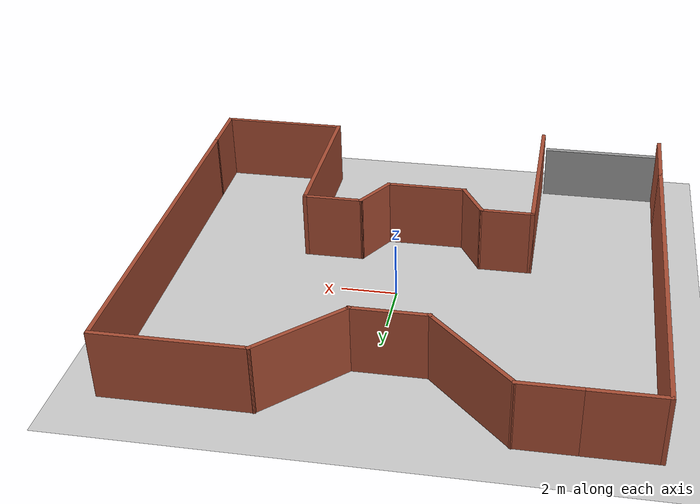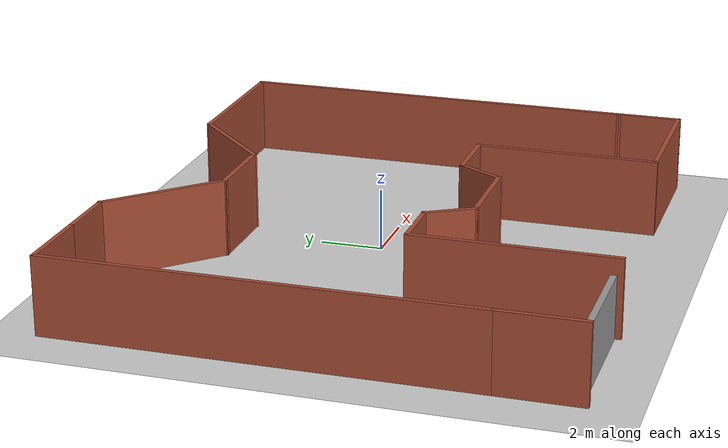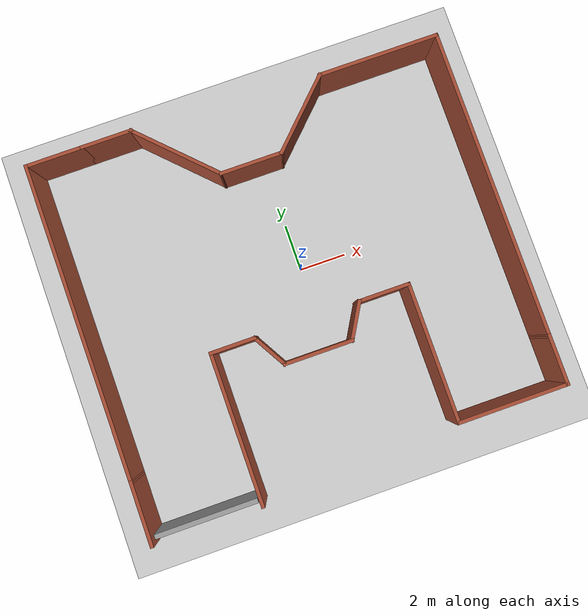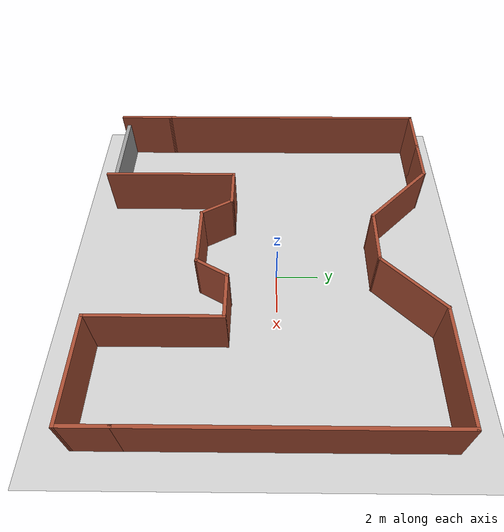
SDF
<sdf version="1.6">
 <world name="default">
  <light name="sun" type="directional">
   <pose>0 0 10 0 -0 0</pose>
   <diffuse>0.8 0.8 0.8 1</diffuse>
   <specular>0.2 0.2 0.2 1</specular>
   <attenuation>
    <range>1000</range>
    <constant>0.9</constant>
    <linear>0.01</linear>
    <quadratic>0.001</quadratic>
   </attenuation>
   <direction>-0.5 0.1 -0.9</direction>
  </light>
  <model name="ground_plane">
   <static>1</static>
   <link name="link">
    <collision name="collision">
     <geometry><plane><normal>0 0 1</normal><size>100 100</size></plane></geometry>
     <surface>
      <contact><collide_bitmask>65535</collide_bitmask></contact>
      <friction><ode><mu>100</mu><mu2>50</mu2></ode></friction>
     </surface>
    </collision>
    <visual name="visual">
     <cast_shadows>0</cast_shadows>
     <geometry><plane><normal>0 0 1</normal><size>100 100</size></plane></geometry>
     <material>
      <script><uri>file://media/materials/scripts/gazebo.material</uri><name>Gazebo/Grey</name></script>
     </material>
    </visual>
   </link>
  </model>
  <gravity>0 0 -9.8</gravity>
  <magnetic_field>6e-06 2.3e-05 -4.2e-05</magnetic_field>
  <atmosphere type="adiabatic"/>
  <physics name="default_physics" default="0" type="ode">
   <max_step_size>0.001</max_step_size>
   <real_time_factor>1</real_time_factor>
   <real_time_update_rate>1000</real_time_update_rate>
  </physics>
  <scene><ambient>0.4 0.4 0.4 1</ambient><background>0.7 0.7 0.7 1</background><shadows>1</shadows></scene>
  <spherical_coordinates>
   <surface_model>EARTH_WGS84</surface_model>
   <latitude_deg>0</latitude_deg>
   <longitude_deg>0</longitude_deg>
   <elevation>0</elevation>
   <heading_deg>0</heading_deg>
  </spherical_coordinates>
  <model name="building">
   <pose>-0.44047 -0.53212 0 0 -0 0</pose>
   <link name="Door_0">
    <collision name="Door_0_Collision">
     <geometry><box><size>4.35862 0.2 2</size></box></geometry>
     <pose>0 0 1 0 -0 0</pose>
    </collision>
    <visual name="Door_0_Visual">
     <pose>0 0 1 0 -0 0</pose>
     <geometry><box><size>4.35862 0.2 2</size></box></geometry>
     <material>
      <script><uri>file://media/materials/scripts/gazebo.material</uri><name>Gazebo/Grey</name></script>
     </material>
    </visual>
    <pose>-6.50998 -7.80567 0 0 -0 0</pose>
   </link>
   <link name="Wall_10">
    <collision name="Wall_10_Collision">
     <geometry><box><size>2.25 0.15 2.5</size></box></geometry>
     <pose>0 0 1.25 0 -0 0</pose>
    </collision>
    <visual name="Wall_10_Visual">
     <pose>0 0 1.25 0 -0 0</pose>
     <geometry><box><size>2.25 0.15 2.5</size></box></geometry>
     <material>
      <script><uri>file://media/materials/scripts/gazebo.material</uri><name>Gazebo/Bricks</name></script>
      <ambient>1 1 1 1</ambient>
     </material>
     <meta><layer>0</layer></meta>
    </visual>
    <pose>-5.37723 7.98357 0 0 -0 0</pose>
   </link>
   <link name="Wall_11">
    <collision name="Wall_11_Collision">
     <geometry><box><size>4.25 0.15 2.5</size></box></geometry>
     <pose>0 0 1.25 0 -0 0</pose>
    </collision>
    <visual name="Wall_11_Visual">
     <pose>0 0 1.25 0 -0 0</pose>
     <geometry><box><size>4.25 0.15 2.5</size></box></geometry>
     <material>
      <script><uri>file://media/materials/scripts/gazebo.material</uri><name>Gazebo/Bricks</name></script>
      <ambient>1 1 1 1</ambient>
     </material>
     <meta><layer>0</layer></meta>
    </visual>
    <pose>-2.87766 6.534 0 0 0 -0.785398</pose>
   </link>
   <link name="Wall_12">
    <collision name="Wall_12_Collision">
     <geometry><box><size>2.75 0.15 2.5</size></box></geometry>
     <pose>0 0 1.25 0 -0 0</pose>
    </collision>
    <visual name="Wall_12_Visual">
     <pose>0 0 1.25 0 -0 0</pose>
     <geometry><box><size>2.75 0.15 2.5</size></box></geometry>
     <material>
      <script><uri>file://media/materials/scripts/gazebo.material</uri><name>Gazebo/Bricks</name></script>
      <ambient>1 1 1 1</ambient>
     </material>
     <meta><layer>0</layer></meta>
    </visual>
    <pose>-0.128091 5.08443 0 0 -0 0</pose>
   </link>
   <link name="Wall_13">
    <collision name="Wall_13_Collision">
     <geometry><box><size>3.75 0.15 2.5</size></box></geometry>
     <pose>0 0 1.25 0 -0 0</pose>
    </collision>
    <visual name="Wall_13_Visual">
     <pose>0 0 1.25 0 -0 0</pose>
     <geometry><box><size>3.75 0.15 2.5</size></box></geometry>
     <material>
      <script><uri>file://media/materials/scripts/gazebo.material</uri><name>Gazebo/Bricks</name></script>
      <ambient>1 1 1 1</ambient>
     </material>
     <meta><layer>0</layer></meta>
    </visual>
    <pose>2.4447 6.35722 0 0 -0 0.785398</pose>
   </link>
   <link name="Wall_14">
    <collision name="Wall_14_Collision">
     <geometry><box><size>5.25 0.15 2.5</size></box></geometry>
     <pose>0 0 1.25 0 -0 0</pose>
    </collision>
    <visual name="Wall_14_Visual">
     <pose>0 0 1.25 0 -0 0</pose>
     <geometry><box><size>5.25 0.15 2.5</size></box></geometry>
     <material>
      <script><uri>file://media/materials/scripts/gazebo.material</uri><name>Gazebo/Bricks</name></script>
      <ambient>1 1 1 1</ambient>
     </material>
     <meta><layer>0</layer></meta>
    </visual>
    <pose>6.26749 7.63001 0 0 -0 0</pose>
   </link>
   <link name="Wall_15">
    <collision name="Wall_15_Collision">
     <geometry><box><size>13.25 0.15 2.5</size></box></geometry>
     <pose>0 0 1.25 0 -0 0</pose>
    </collision>
    <visual name="Wall_15_Visual">
     <pose>0 0 1.25 0 -0 0</pose>
     <geometry><box><size>13.25 0.15 2.5</size></box></geometry>
     <material>
      <script><uri>file://media/materials/scripts/gazebo.material</uri><name>Gazebo/Bricks</name></script>
      <ambient>1 1 1 1</ambient>
     </material>
     <meta><layer>0</layer></meta>
    </visual>
    <pose>8.81749 1.08001 0 0 0 -1.5708</pose>
   </link>
   <link name="Wall_17">
    <collision name="Wall_17_Collision">
     <geometry><box><size>2.75 0.15 2.5</size></box></geometry>
     <pose>0 0 1.25 0 -0 0</pose>
    </collision>
    <visual name="Wall_17_Visual">
     <pose>0 0 1.25 0 -0 0</pose>
     <geometry><box><size>2.75 0.15 2.5</size></box></geometry>
     <material>
      <script><uri>file://media/materials/scripts/gazebo.material</uri><name>Gazebo/Bricks</name></script>
      <ambient>1 1 1 1</ambient>
     </material>
     <meta><layer>0</layer></meta>
    </visual>
    <pose>-8.77723 -6.71463 0 0 0 -1.5708</pose>
   </link>
   <link name="Wall_19">
    <collision name="Wall_19_Collision">
     <geometry><box><size>6.5 0.15 2.5</size></box></geometry>
     <pose>0 0 1.25 0 -0 0</pose>
    </collision>
    <visual name="Wall_19_Visual">
     <pose>0 0 1.25 0 -0 0</pose>
     <geometry><box><size>6.5 0.15 2.5</size></box></geometry>
     <material>
      <script><uri>file://media/materials/scripts/gazebo.material</uri><name>Gazebo/Bricks</name></script>
      <ambient>1 1 1 1</ambient>
     </material>
     <meta><layer>0</layer></meta>
    </visual>
    <pose>-4.17723 -4.83963 0 0 -0 1.5708</pose>
   </link>
   <link name="Wall_20">
    <collision name="Wall_20_Collision">
     <geometry><box><size>2 0.15 2.5</size></box></geometry>
     <pose>0 0 1.25 0 -0 0</pose>
    </collision>
    <visual name="Wall_20_Visual">
     <pose>0 0 1.25 0 -0 0</pose>
     <geometry><box><size>2 0.15 2.5</size></box></geometry>
     <material>
      <script><uri>file://media/materials/scripts/gazebo.material</uri><name>Gazebo/Bricks</name></script>
      <ambient>1 1 1 1</ambient>
     </material>
     <meta><layer>0</layer></meta>
    </visual>
    <pose>-3.25223 -1.66463 0 0 -0 0</pose>
   </link>
   <link name="Wall_21">
    <collision name="Wall_21_Collision">
     <geometry><box><size>1.75 0.15 2.5</size></box></geometry>
     <pose>0 0 1.25 0 -0 0</pose>
    </collision>
    <visual name="Wall_21_Visual">
     <pose>0 0 1.25 0 -0 0</pose>
     <geometry><box><size>1.75 0.15 2.5</size></box></geometry>
     <material>
      <script><uri>file://media/materials/scripts/gazebo.material</uri><name>Gazebo/Bricks</name></script>
      <ambient>1 1 1 1</ambient>
     </material>
     <meta><layer>0</layer></meta>
    </visual>
    <pose>-1.92723 -2.35745 0 0 0 -1.0472</pose>
   </link>
   <link name="Wall_22">
    <collision name="Wall_22_Collision">
     <geometry><box><size>3 0.15 2.5</size></box></geometry>
     <pose>0 0 1.25 0 -0 0</pose>
    </collision>
    <visual name="Wall_22_Visual">
     <pose>0 0 1.25 0 -0 0</pose>
     <geometry><box><size>3 0.15 2.5</size></box></geometry>
     <material>
      <script><uri>file://media/materials/scripts/gazebo.material</uri><name>Gazebo/Bricks</name></script>
      <ambient>1 1 1 1</ambient>
     </material>
     <meta><layer>0</layer></meta>
    </visual>
    <pose>-0.102228 -3.05027 0 0 -0 0</pose>
   </link>
   <link name="Wall_23">
    <collision name="Wall_23_Collision">
     <geometry><box><size>1.75 0.15 2.5</size></box></geometry>
     <pose>0 0 1.25 0 -0 0</pose>
    </collision>
    <visual name="Wall_23_Visual">
     <pose>0 0 1.25 0 -0 0</pose>
     <geometry><box><size>1.75 0.15 2.5</size></box></geometry>
     <material>
      <script><uri>file://media/materials/scripts/gazebo.material</uri><name>Gazebo/Bricks</name></script>
      <ambient>1 1 1 1</ambient>
     </material>
     <meta><layer>0</layer></meta>
    </visual>
    <pose>1.72277 -2.35745 0 0 -0 1.0472</pose>
   </link>
   <link name="Wall_24">
    <collision name="Wall_24_Collision">
     <geometry><box><size>2.25 0.15 2.5</size></box></geometry>
     <pose>0 0 1.25 0 -0 0</pose>
    </collision>
    <visual name="Wall_24_Visual">
     <pose>0 0 1.25 0 -0 0</pose>
     <geometry><box><size>2.25 0.15 2.5</size></box></geometry>
     <material>
      <script><uri>file://media/materials/scripts/gazebo.material</uri><name>Gazebo/Bricks</name></script>
      <ambient>1 1 1 1</ambient>
     </material>
     <meta><layer>0</layer></meta>
    </visual>
    <pose>3.17277 -1.66463 0 0 -0 0</pose>
   </link>
   <link name="Wall_25">
    <collision name="Wall_25_Collision">
     <geometry><box><size>6 0.15 2.5</size></box></geometry>
     <pose>0 0 1.25 0 -0 0</pose>
    </collision>
    <visual name="Wall_25_Visual">
     <pose>0 0 1.25 0 -0 0</pose>
     <geometry><box><size>6 0.15 2.5</size></box></geometry>
     <material>
      <script><uri>file://media/materials/scripts/gazebo.material</uri><name>Gazebo/Bricks</name></script>
      <ambient>1 1 1 1</ambient>
     </material>
     <meta><layer>0</layer></meta>
    </visual>
    <pose>4.22277 -4.58963 0 0 0 -1.5708</pose>
   </link>
   <link name="Wall_26">
    <collision name="Wall_26_Collision">
     <geometry><box><size>4.75 0.15 2.5</size></box></geometry>
     <pose>0 0 1.25 0 -0 0</pose>
    </collision>
    <visual name="Wall_26_Visual">
     <pose>0 0 1.25 0 -0 0</pose>
     <geometry><box><size>4.75 0.15 2.5</size></box></geometry>
     <material>
      <script><uri>file://media/materials/scripts/gazebo.material</uri><name>Gazebo/Bricks</name></script>
      <ambient>1 1 1 1</ambient>
     </material>
     <meta><layer>0</layer></meta>
    </visual>
    <pose>6.52277 -7.51463 0 0 -0 0</pose>
   </link>
   <link name="Wall_27">
    <collision name="Wall_27_Collision">
     <geometry><box><size>2.19465 0.15 2.5</size></box></geometry>
     <pose>0 0 1.25 0 -0 0</pose>
    </collision>
    <visual name="Wall_27_Visual">
     <pose>0 0 1.25 0 -0 0</pose>
     <geometry><box><size>2.19465 0.15 2.5</size></box></geometry>
     <material>
      <script><uri>file://media/materials/scripts/gazebo.material</uri><name>Gazebo/Bricks</name></script>
      <ambient>1 1 1 1</ambient>
     </material>
     <meta><layer>0</layer></meta>
    </visual>
    <pose>8.82013 -6.49231 0 0 -0 1.57338</pose>
   </link>
   <link name="Wall_6">
    <collision name="Wall_6_Collision">
     <geometry><box><size>2.5 0.15 2.5</size></box></geometry>
     <pose>0 0 1.25 0 -0 0</pose>
    </collision>
    <visual name="Wall_6_Visual">
     <pose>0 0 1.25 0 -0 0</pose>
     <geometry><box><size>2.5 0.15 2.5</size></box></geometry>
     <material>
      <script><uri>file://media/materials/scripts/gazebo.material</uri><name>Gazebo/Bricks</name></script>
      <ambient>1 1 1 1</ambient>
     </material>
     <meta><layer>0</layer></meta>
    </visual>
    <pose>-7.60223 7.98357 0 0 -0 0</pose>
   </link>
   <link name="Wall_8">
    <collision name="Wall_8_Collision">
     <geometry><box><size>13.5485 0.15 2.5</size></box></geometry>
     <pose>0 0 1.25 0 -0 0</pose>
    </collision>
    <visual name="Wall_8_Visual">
     <pose>0 0 1.25 0 -0 0</pose>
     <geometry><box><size>13.5485 0.15 2.5</size></box></geometry>
     <material>
      <script><uri>file://media/materials/scripts/gazebo.material</uri><name>Gazebo/Bricks</name></script>
      <ambient>1 1 1 1</ambient>
     </material>
     <meta><layer>0</layer></meta>
    </visual>
    <pose>-8.79997 1.28447 0 0 0 -1.5674</pose>
   </link>
   <static>1</static>
  </model>
 </world>
</sdf>
